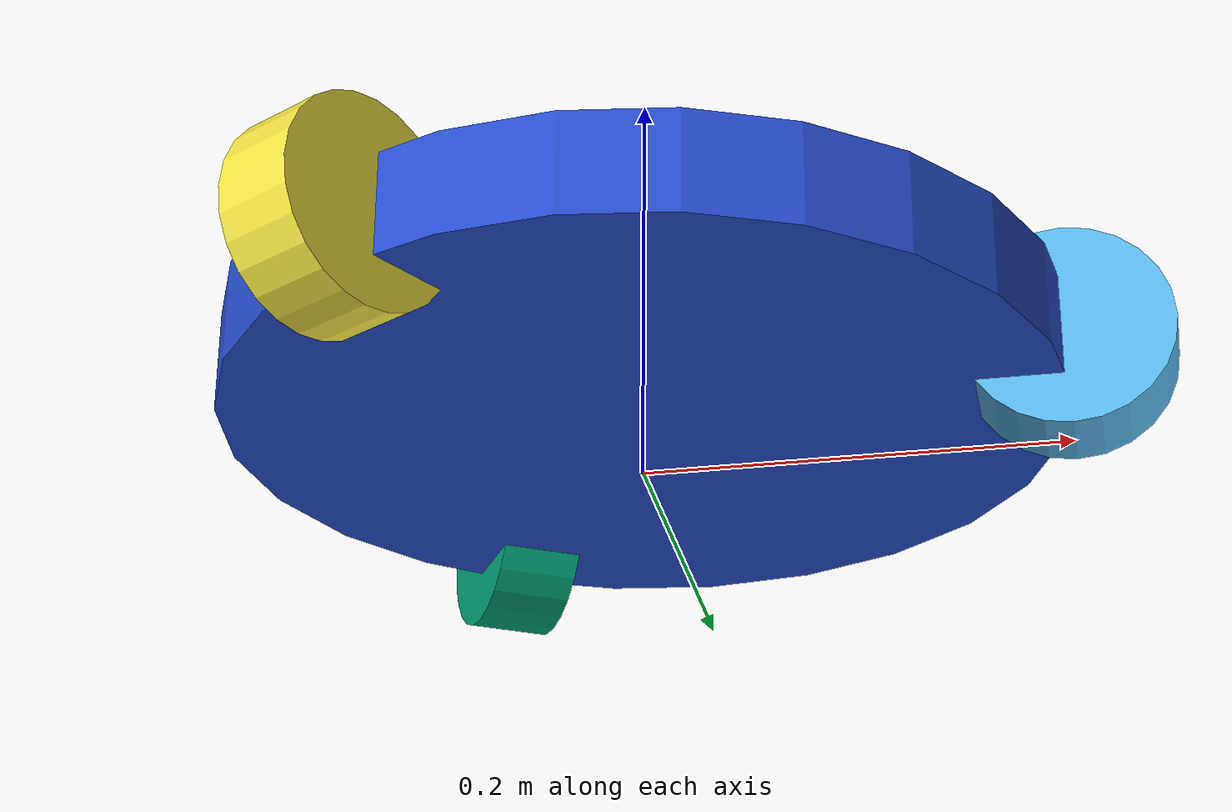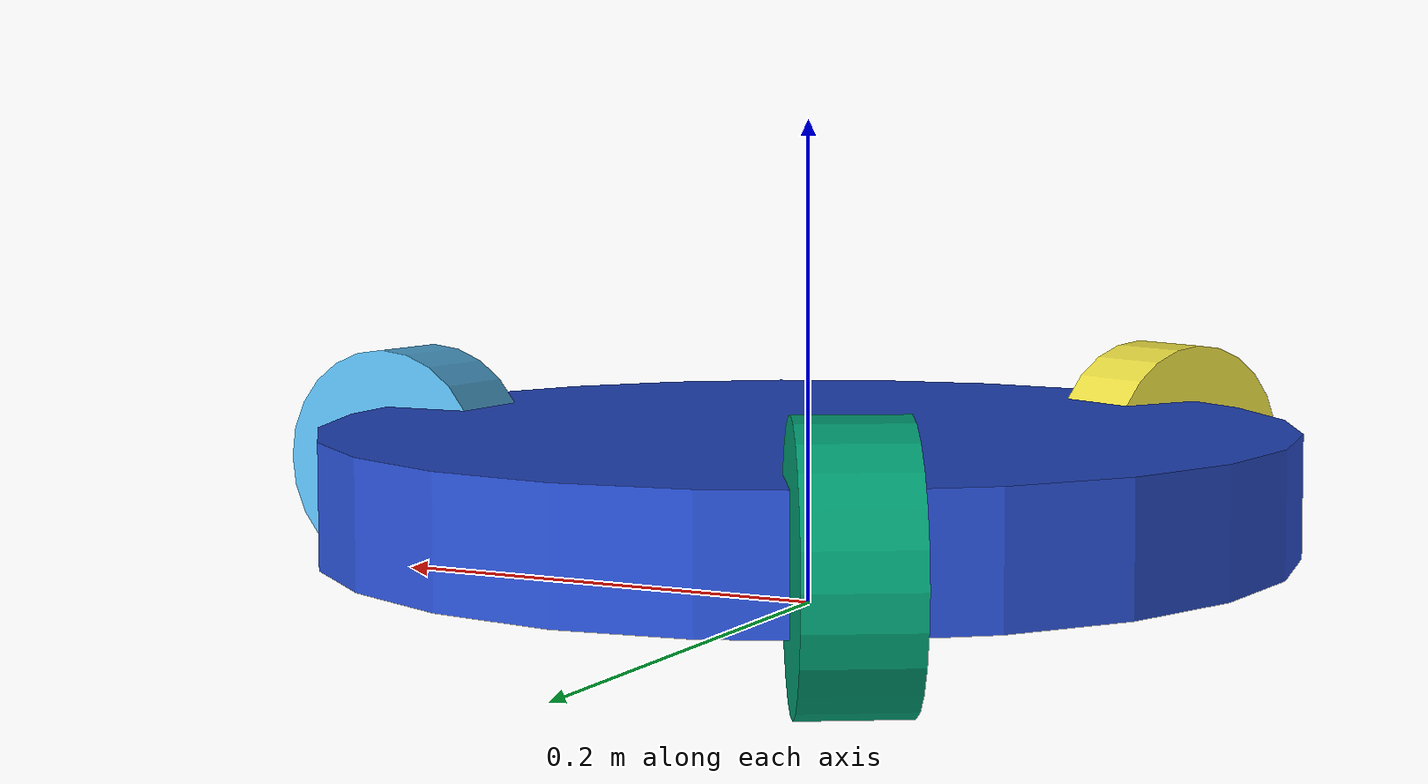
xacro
<?xml version="1.0"?>
<robot name="trashy" xmlns:xacro="http://www.ros.org/wiki/xacro">
    <xacro:arg name="use_sim" default="false"/>

    <xacro:include filename="trashy_bot.urdf.xacro"/>
    <xacro:include filename="trashy_ros2_control.urdf.xacro"/>

    <!-- Odom calculation ki BT dur karne ke liye -->
    <link name="base_footprint"/>
    <joint name="base_joint" type="fixed">
        <parent link="base_footprint"/>
        <child link="base_link"/>
        <origin xyz="0 0 0.05" rpy="0 0 0"/> <!-- 0.05 matches your wheel radius -->
    </joint>
</robot>

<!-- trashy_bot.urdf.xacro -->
<robot name="trashy_bot" xmlns:xacro="http://www.ros.org/wiki/xacro">

    <link name="base_link">
        <visual>
            <geometry>
                <cylinder radius="0.2" length="0.05"/>
            </geometry>
            <material name="blue"/>
        </visual>
    </link>

    <!-- Wheel Macro for easy placement -->
    <xacro:macro name="omni_wheel" params="prefix angle x y">
        <link name="${prefix}_link">
            <visual>
                <origin xyz="0 0 0" rpy="${pi/2} 0 0"/>
                <geometry>
                    <cylinder radius="0.05" length="0.04"/>
                </geometry>
            </visual>
        </link>

        <joint name="${prefix}_joint" type="continuous">
            <parent link="base_link"/>
            <child link="${prefix}_link"/>
            <origin xyz="${x} ${y} 0" rpy="0 0 ${angle}"/>
            <axis xyz="0 1 0"/>
        </joint>
    </xacro:macro>

    <!-- Placing 3 Wheels at 120 degree intervals -->
    <!-- Wheel 1: Front (0 degrees) -->
    <xacro:omni_wheel prefix="wheel_1" angle="0" x="0.2" y="0"/>

    <!-- Wheel 2: Back Left (120 degrees / 2.094 rad) -->
    <xacro:omni_wheel prefix="wheel_2" angle="2.094395" x="-0.1" y="0.1732"/>

    <!-- Wheel 3: Back Right (240 degrees / 4.188 rad) -->
    <xacro:omni_wheel prefix="wheel_3" angle="4.188790" x="-0.1" y="-0.1732"/>
</robot>
